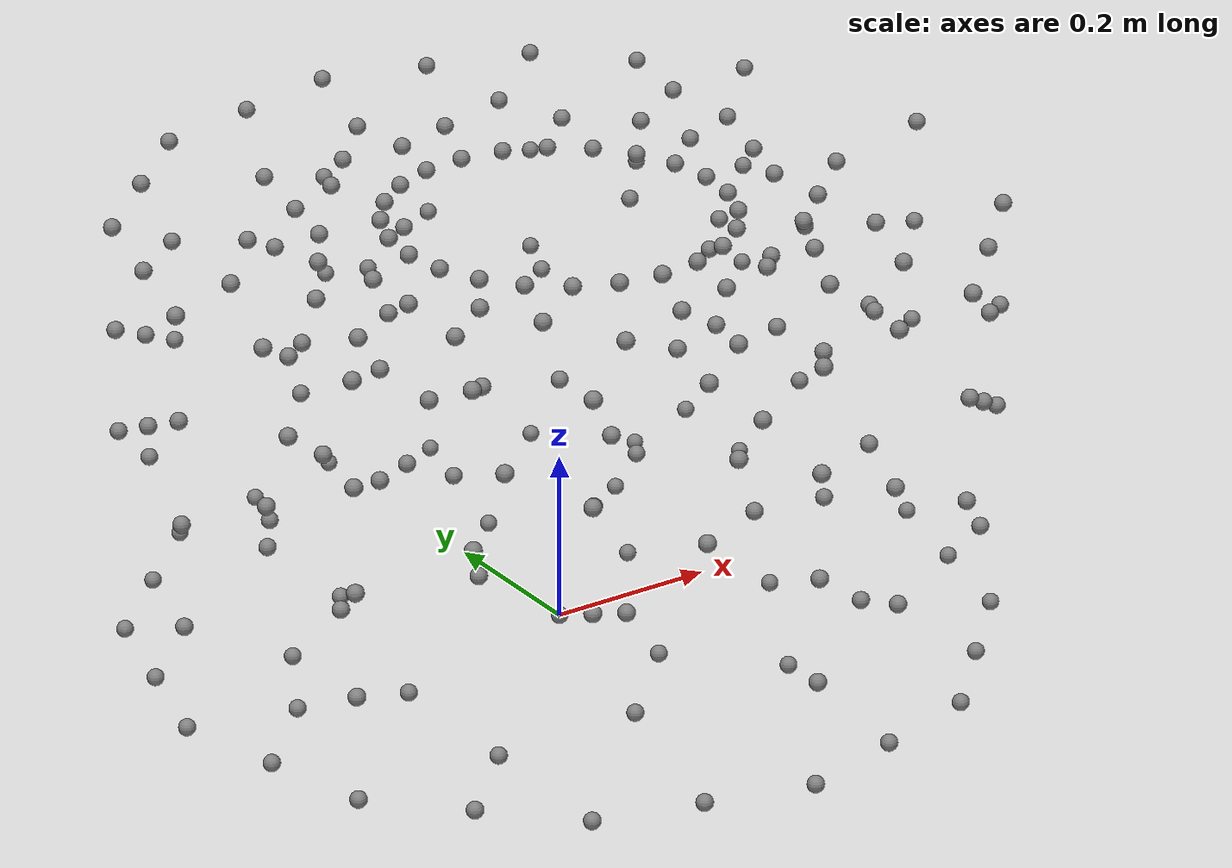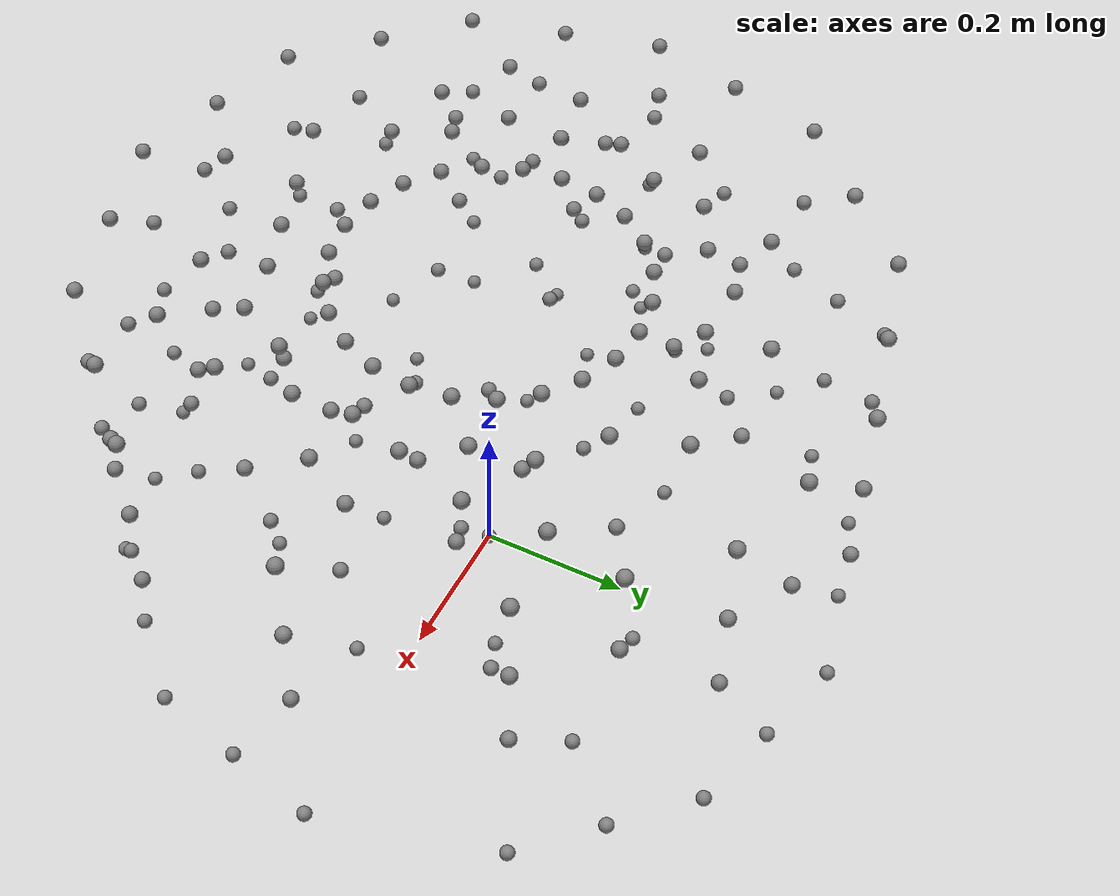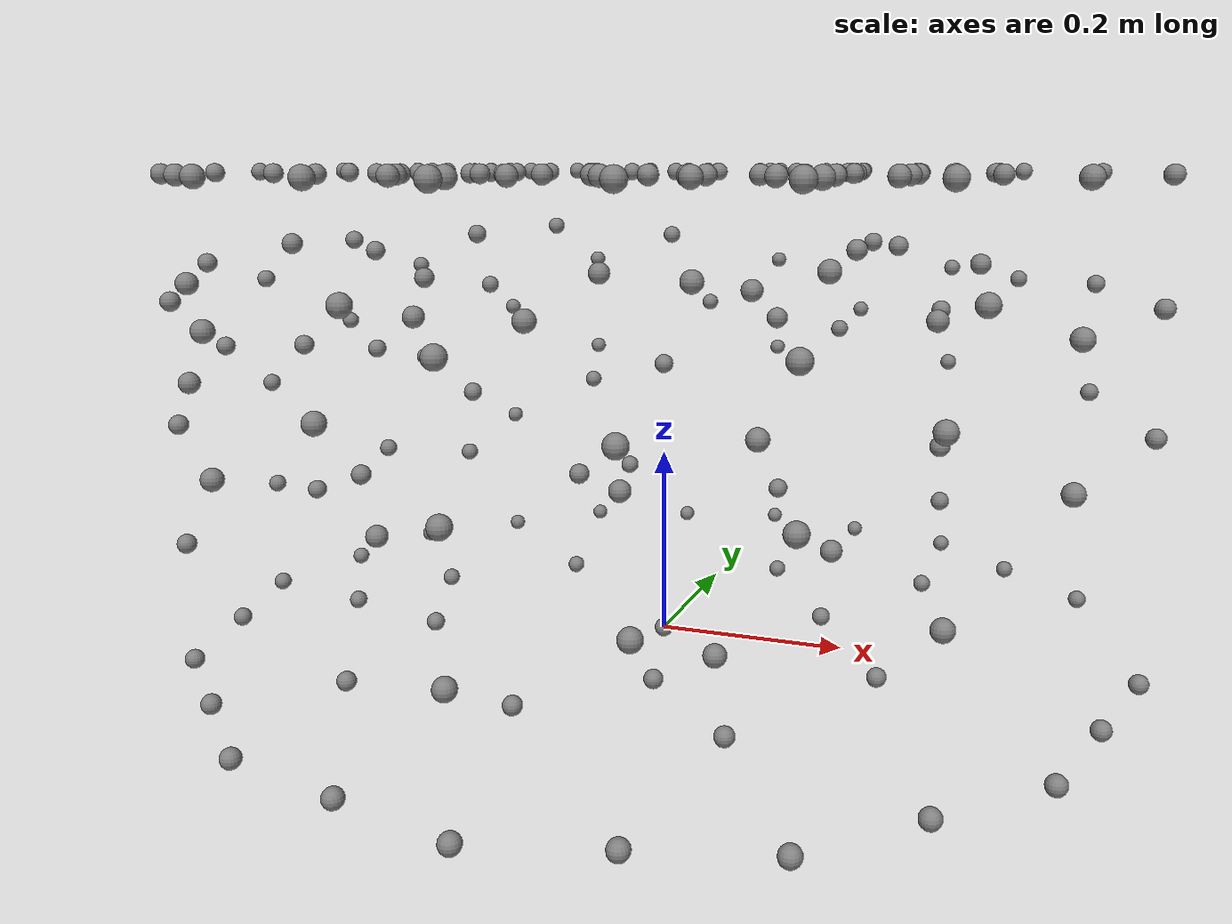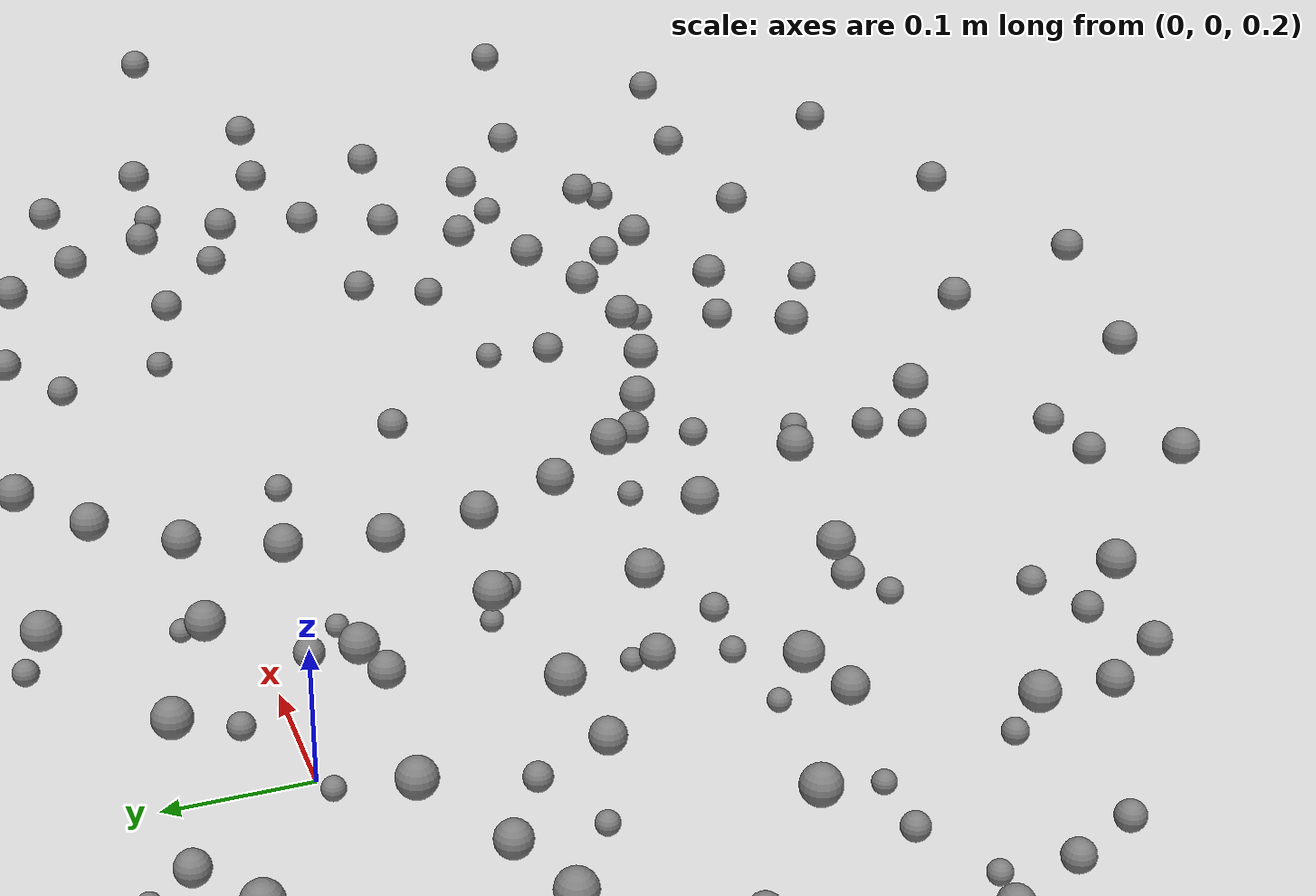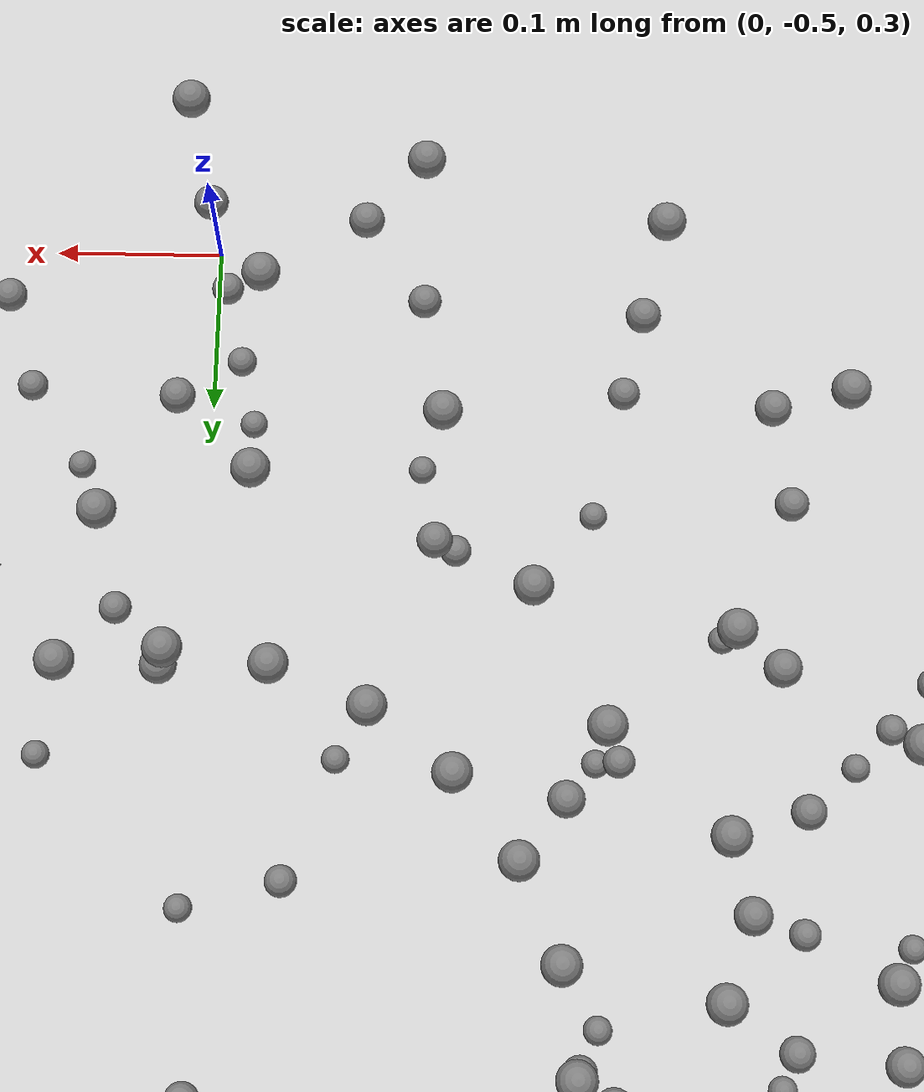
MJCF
<mujoco model="unnamed_model">
  <default>
    <default class="/"/>
  </default>
  <worldbody>
    <body name="point_mass_0">
      <freejoint name="//unnamed_joint_0"/>
      <geom name="point_mass_0" class="/" type="sphere" size="0.01" mass="0.01" pos="-0.17399978637695312 0.10040092468261719 0.50000041723251343"/>
    </body>
    <body name="point_mass_1">
      <freejoint name="//unnamed_joint_1"/>
      <geom name="point_mass_1" class="/" type="sphere" size="0.01" mass="0.01" pos="0 -0 0.29800042510032654"/>
    </body>
    <body name="point_mass_2">
      <freejoint name="//unnamed_joint_2"/>
      <geom name="point_mass_2" class="/" type="sphere" size="0.01" mass="0.01" pos="-0.14200019836425781 0.14200019836425781 0.50000041723251343"/>
    </body>
    <body name="point_mass_3">
      <freejoint name="//unnamed_joint_3"/>
      <geom name="point_mass_3" class="/" type="sphere" size="0.01" mass="0.01" pos="-0.1939997673034668 0.052000045776367188 0.50000041723251343"/>
    </body>
    <body name="point_mass_4">
      <freejoint name="//unnamed_joint_4"/>
      <geom name="point_mass_4" class="/" type="sphere" size="0.01" mass="0.01" pos="-0.20079994201660156 -0 0.50000041723251343"/>
    </body>
    <body name="point_mass_5">
      <freejoint name="//unnamed_joint_5"/>
      <geom name="point_mass_5" class="/" type="sphere" size="0.01" mass="0.01" pos="-0.1939997673034668 -0.052000045776367188 0.50000041723251343"/>
    </body>
    <body name="point_mass_6">
      <freejoint name="//unnamed_joint_6"/>
      <geom name="point_mass_6" class="/" type="sphere" size="0.01" mass="0.01" pos="-0.17399978637695312 -0.10040092468261719 0.50000041723251343"/>
    </body>
    <body name="point_mass_7">
      <freejoint name="//unnamed_joint_7"/>
      <geom name="point_mass_7" class="/" type="sphere" size="0.01" mass="0.01" pos="-0.14200019836425781 -0.14200019836425781 0.50000041723251343"/>
    </body>
    <body name="point_mass_8">
      <freejoint name="//unnamed_joint_8"/>
      <geom name="point_mass_8" class="/" type="sphere" size="0.01" mass="0.01" pos="-0.10039997100830078 -0.17399978637695312 0.50000041723251343"/>
    </body>
    <body name="point_mass_9">
      <freejoint name="//unnamed_joint_9"/>
      <geom name="point_mass_9" class="/" type="sphere" size="0.01" mass="0.01" pos="-0.052000045776367188 -0.194000244140625 0.50000041723251343"/>
    </body>
    <body name="point_mass_10">
      <freejoint name="//unnamed_joint_10"/>
      <geom name="point_mass_10" class="/" type="sphere" size="0.01" mass="0.01" pos="0 -0.20120048522949219 0.50000041723251343"/>
    </body>
    <body name="point_mass_11">
      <freejoint name="//unnamed_joint_11"/>
      <geom name="point_mass_11" class="/" type="sphere" size="0.01" mass="0.01" pos="0.25 0.43300056457519531 0.50000041723251343"/>
    </body>
    <body name="point_mass_12">
      <freejoint name="//unnamed_joint_12"/>
      <geom name="point_mass_12" class="/" type="sphere" size="0.01" mass="0.01" pos="0 0.5 0.50000041723251343"/>
    </body>
    <body name="point_mass_13">
      <freejoint name="//unnamed_joint_13"/>
      <geom name="point_mass_13" class="/" type="sphere" size="0.01" mass="0.01" pos="0.052000045776367188 0.194000244140625 0.50000041723251343"/>
    </body>
    <body name="point_mass_14">
      <freejoint name="//unnamed_joint_14"/>
      <geom name="point_mass_14" class="/" type="sphere" size="0.01" mass="0.01" pos="-0.052000045776367188 0.194000244140625 0.50000041723251343"/>
    </body>
    <body name="point_mass_15">
      <freejoint name="//unnamed_joint_15"/>
      <geom name="point_mass_15" class="/" type="sphere" size="0.01" mass="0.01" pos="0 0.20079994201660156 0.50000041723251343"/>
    </body>
    <body name="point_mass_16">
      <freejoint name="//unnamed_joint_16"/>
      <geom name="point_mass_16" class="/" type="sphere" size="0.01" mass="0.01" pos="-0.25 0.43300056457519531 0.50000041723251343"/>
    </body>
    <body name="point_mass_17">
      <freejoint name="//unnamed_joint_17"/>
      <geom name="point_mass_17" class="/" type="sphere" size="0.01" mass="0.01" pos="-0.10039997100830078 0.17399978637695312 0.50000041723251343"/>
    </body>
    <body name="point_mass_18">
      <freejoint name="//unnamed_joint_18"/>
      <geom name="point_mass_18" class="/" type="sphere" size="0.01" mass="0.01" pos="-0.43300008773803711 0.25 0.50000041723251343"/>
    </body>
    <body name="point_mass_19">
      <freejoint name="//unnamed_joint_19"/>
      <geom name="point_mass_19" class="/" type="sphere" size="0.01" mass="0.01" pos="-0.5 -0 0.50000041723251343"/>
    </body>
    <body name="point_mass_20">
      <freejoint name="//unnamed_joint_20"/>
      <geom name="point_mass_20" class="/" type="sphere" size="0.01" mass="0.01" pos="-0.43300008773803711 -0.25 0.50000041723251343"/>
    </body>
    <body name="point_mass_21">
      <freejoint name="//unnamed_joint_21"/>
      <geom name="point_mass_21" class="/" type="sphere" size="0.01" mass="0.01" pos="-0.25 -0.43300056457519531 0.50000041723251343"/>
    </body>
    <body name="point_mass_22">
      <freejoint name="//unnamed_joint_22"/>
      <geom name="point_mass_22" class="/" type="sphere" size="0.01" mass="0.01" pos="0 -0.5 0.50000041723251343"/>
    </body>
    <body name="point_mass_23">
      <freejoint name="//unnamed_joint_23"/>
      <geom name="point_mass_23" class="/" type="sphere" size="0.01" mass="0.01" pos="0.25 -0.43300056457519531 0.50000041723251343"/>
    </body>
    <body name="point_mass_24">
      <freejoint name="//unnamed_joint_24"/>
      <geom name="point_mass_24" class="/" type="sphere" size="0.01" mass="0.01" pos="0.052000045776367188 -0.194000244140625 0.50000041723251343"/>
    </body>
    <body name="point_mass_25">
      <freejoint name="//unnamed_joint_25"/>
      <geom name="point_mass_25" class="/" type="sphere" size="0.01" mass="0.01" pos="0.25 -0.43300056457519531 4.1723251342773438e-07"/>
    </body>
    <body name="point_mass_26">
      <freejoint name="//unnamed_joint_26"/>
      <geom name="point_mass_26" class="/" type="sphere" size="0.01" mass="0.01" pos="0 -0.5 4.1723251342773438e-07"/>
    </body>
    <body name="point_mass_27">
      <freejoint name="//unnamed_joint_27"/>
      <geom name="point_mass_27" class="/" type="sphere" size="0.01" mass="0.01" pos="-0.25 -0.43300056457519531 4.1723251342773438e-07"/>
    </body>
    <body name="point_mass_28">
      <freejoint name="//unnamed_joint_28"/>
      <geom name="point_mass_28" class="/" type="sphere" size="0.01" mass="0.01" pos="-0.43300008773803711 -0.25 4.1723251342773438e-07"/>
    </body>
    <body name="point_mass_29">
      <freejoint name="//unnamed_joint_29"/>
      <geom name="point_mass_29" class="/" type="sphere" size="0.01" mass="0.01" pos="-0.5 -0 4.1723251342773438e-07"/>
    </body>
    <body name="point_mass_30">
      <freejoint name="//unnamed_joint_30"/>
      <geom name="point_mass_30" class="/" type="sphere" size="0.01" mass="0.01" pos="-0.43300008773803711 0.25 4.1723251342773438e-07"/>
    </body>
    <body name="point_mass_31">
      <freejoint name="//unnamed_joint_31"/>
      <geom name="point_mass_31" class="/" type="sphere" size="0.01" mass="0.01" pos="-0.25 0.43300056457519531 4.1723251342773438e-07"/>
    </body>
    <body name="point_mass_32">
      <freejoint name="//unnamed_joint_32"/>
      <geom name="point_mass_32" class="/" type="sphere" size="0.01" mass="0.01" pos="0 0.5 4.1723251342773438e-07"/>
    </body>
    <body name="point_mass_33">
      <freejoint name="//unnamed_joint_33"/>
      <geom name="point_mass_33" class="/" type="sphere" size="0.01" mass="0.01" pos="0.25 0.43300056457519531 4.1723251342773438e-07"/>
    </body>
    <body name="point_mass_34">
      <freejoint name="//unnamed_joint_34"/>
      <geom name="point_mass_34" class="/" type="sphere" size="0.01" mass="0.01" pos="0.43300008773803711 0.25 4.1723251342773438e-07"/>
    </body>
    <body name="point_mass_35">
      <freejoint name="//unnamed_joint_35"/>
      <geom name="point_mass_35" class="/" type="sphere" size="0.01" mass="0.01" pos="0.5 -0 4.1723251342773438e-07"/>
    </body>
    <body name="point_mass_36">
      <freejoint name="//unnamed_joint_36"/>
      <geom name="point_mass_36" class="/" type="sphere" size="0.01" mass="0.01" pos="0.43300008773803711 -0.25 4.1723251342773438e-07"/>
    </body>
    <body name="point_mass_37">
      <freejoint name="//unnamed_joint_37"/>
      <geom name="point_mass_37" class="/" type="sphere" size="0.01" mass="0.01" pos="0.10039997100830078 -0.17399978637695312 0.50000041723251343"/>
    </body>
    <body name="point_mass_38">
      <freejoint name="//unnamed_joint_38"/>
      <geom name="point_mass_38" class="/" type="sphere" size="0.01" mass="0.01" pos="0.43300008773803711 -0.25 0.50000041723251343"/>
    </body>
    <body name="point_mass_39">
      <freejoint name="//unnamed_joint_39"/>
      <geom name="point_mass_39" class="/" type="sphere" size="0.01" mass="0.01" pos="0.14200019836425781 -0.14200019836425781 0.50000041723251343"/>
    </body>
    <body name="point_mass_40">
      <freejoint name="//unnamed_joint_40"/>
      <geom name="point_mass_40" class="/" type="sphere" size="0.01" mass="0.01" pos="0.17399978637695312 -0.10040092468261719 0.50000041723251343"/>
    </body>
    <body name="point_mass_41">
      <freejoint name="//unnamed_joint_41"/>
      <geom name="point_mass_41" class="/" type="sphere" size="0.01" mass="0.01" pos="0.1939997673034668 -0.052000045776367188 0.50000041723251343"/>
    </body>
    <body name="point_mass_42">
      <freejoint name="//unnamed_joint_42"/>
      <geom name="point_mass_42" class="/" type="sphere" size="0.01" mass="0.01" pos="0.5 -0 0.50000041723251343"/>
    </body>
    <body name="point_mass_43">
      <freejoint name="//unnamed_joint_43"/>
      <geom name="point_mass_43" class="/" type="sphere" size="0.01" mass="0.01" pos="0.20079994201660156 -0 0.50000041723251343"/>
    </body>
    <body name="point_mass_44">
      <freejoint name="//unnamed_joint_44"/>
      <geom name="point_mass_44" class="/" type="sphere" size="0.01" mass="0.01" pos="0.43300008773803711 0.25 0.50000041723251343"/>
    </body>
    <body name="point_mass_45">
      <freejoint name="//unnamed_joint_45"/>
      <geom name="point_mass_45" class="/" type="sphere" size="0.01" mass="0.01" pos="0.1939997673034668 0.052000045776367188 0.50000041723251343"/>
    </body>
    <body name="point_mass_46">
      <freejoint name="//unnamed_joint_46"/>
      <geom name="point_mass_46" class="/" type="sphere" size="0.01" mass="0.01" pos="0.17399978637695312 0.10040092468261719 0.50000041723251343"/>
    </body>
    <body name="point_mass_47">
      <freejoint name="//unnamed_joint_47"/>
      <geom name="point_mass_47" class="/" type="sphere" size="0.01" mass="0.01" pos="0.14200019836425781 0.14200019836425781 0.50000041723251343"/>
    </body>
    <body name="point_mass_48">
      <freejoint name="//unnamed_joint_48"/>
      <geom name="point_mass_48" class="/" type="sphere" size="0.01" mass="0.01" pos="0.10039997100830078 0.17399978637695312 0.50000041723251343"/>
    </body>
    <body name="point_mass_49">
      <freejoint name="//unnamed_joint_49"/>
      <geom name="point_mass_49" class="/" type="sphere" size="0.01" mass="0.01" pos="0 -0 4.1723251342773438e-07"/>
    </body>
    <body name="point_mass_50">
      <freejoint name="//unnamed_joint_50"/>
      <geom name="point_mass_50" class="/" type="sphere" size="0.01" mass="0.01" pos="-0.046006792679451465 0.35039997100830078 0.50000041723251343"/>
    </body>
    <body name="point_mass_51">
      <freejoint name="//unnamed_joint_51"/>
      <geom name="point_mass_51" class="/" type="sphere" size="0.01" mass="0.01" pos="-0.2153032480662207 0.28033634838766525 0.50000041723251343"/>
    </body>
    <body name="point_mass_52">
      <freejoint name="//unnamed_joint_52"/>
      <geom name="point_mass_52" class="/" type="sphere" size="0.01" mass="0.01" pos="-0.32663839640170034 0.13514093703698343 0.50000041723251343"/>
    </body>
    <body name="point_mass_53">
      <freejoint name="//unnamed_joint_53"/>
      <geom name="point_mass_53" class="/" type="sphere" size="0.01" mass="0.01" pos="-0.35039997100830078 -0.046008226857323364 0.50000041723251343"/>
    </body>
    <body name="point_mass_54">
      <freejoint name="//unnamed_joint_54"/>
      <geom name="point_mass_54" class="/" type="sphere" size="0.01" mass="0.01" pos="-0.28033539327304835 -0.21530514753628865 0.50000041723251343"/>
    </body>
    <body name="point_mass_55">
      <freejoint name="//unnamed_joint_55"/>
      <geom name="point_mass_55" class="/" type="sphere" size="0.01" mass="0.01" pos="-0.13514256726788931 -0.32663752267311807 0.50000041723251343"/>
    </body>
    <body name="point_mass_56">
      <freejoint name="//unnamed_joint_56"/>
      <geom name="point_mass_56" class="/" type="sphere" size="0.01" mass="0.01" pos="0.13514256726788937 -0.32663752267311807 0.50000041723251343"/>
    </body>
    <body name="point_mass_57">
      <freejoint name="//unnamed_joint_57"/>
      <geom name="point_mass_57" class="/" type="sphere" size="0.01" mass="0.01" pos="0.28033539327304829 -0.21530514753628865 0.50000041723251343"/>
    </body>
    <body name="point_mass_58">
      <freejoint name="//unnamed_joint_58"/>
      <geom name="point_mass_58" class="/" type="sphere" size="0.01" mass="0.01" pos="0.35039997100830078 -0.046008226857323364 0.50000041723251343"/>
    </body>
    <body name="point_mass_59">
      <freejoint name="//unnamed_joint_59"/>
      <geom name="point_mass_59" class="/" type="sphere" size="0.01" mass="0.01" pos="0.32663839640170034 0.13514093703698343 0.50000041723251343"/>
    </body>
    <body name="point_mass_60">
      <freejoint name="//unnamed_joint_60"/>
      <geom name="point_mass_60" class="/" type="sphere" size="0.01" mass="0.01" pos="0.13514256726788931 0.32663752267311807 0.50000041723251343"/>
    </body>
    <body name="point_mass_61">
      <freejoint name="//unnamed_joint_61"/>
      <geom name="point_mass_61" class="/" type="sphere" size="0.01" mass="0.01" pos="-0.11367124197062077 0.27467818497706259 0.50000041723251343"/>
    </body>
    <body name="point_mass_62">
      <freejoint name="//unnamed_joint_62"/>
      <geom name="point_mass_62" class="/" type="sphere" size="0.01" mass="0.01" pos="0.038707324138498589 0.29457797638501937 0.50000041723251343"/>
    </body>
    <body name="point_mass_63">
      <freejoint name="//unnamed_joint_63"/>
      <geom name="point_mass_63" class="/" type="sphere" size="0.01" mass="0.01" pos="-0.23567601892933199 0.18095162514451751 0.50000041723251343"/>
    </body>
    <body name="point_mass_64">
      <freejoint name="//unnamed_joint_64"/>
      <geom name="point_mass_64" class="/" type="sphere" size="0.01" mass="0.01" pos="-0.27467726347596999 -0.11366980488156189 0.50000041723251343"/>
    </body>
    <body name="point_mass_65">
      <freejoint name="//unnamed_joint_65"/>
      <geom name="point_mass_65" class="/" type="sphere" size="0.01" mass="0.01" pos="-0.29457911808534953 0.038708395735159551 0.50000041723251343"/>
    </body>
    <body name="point_mass_66">
      <freejoint name="//unnamed_joint_66"/>
      <geom name="point_mass_66" class="/" type="sphere" size="0.01" mass="0.01" pos="-0.18095029999982984 -0.23567669685270559 0.50000041723251343"/>
    </body>
    <body name="point_mass_67">
      <freejoint name="//unnamed_joint_67"/>
      <geom name="point_mass_67" class="/" type="sphere" size="0.01" mass="0.01" pos="-0.039387370425241076 -0.29428361128182629 0.50000041723251343"/>
    </body>
    <body name="point_mass_68">
      <freejoint name="//unnamed_joint_68"/>
      <geom name="point_mass_68" class="/" type="sphere" size="0.01" mass="0.01" pos="0.18095029999982981 -0.23567669685270559 0.50000041723251343"/>
    </body>
    <body name="point_mass_69">
      <freejoint name="//unnamed_joint_69"/>
      <geom name="point_mass_69" class="/" type="sphere" size="0.01" mass="0.01" pos="0.27467726347597005 -0.11366980488156191 0.50000041723251343"/>
    </body>
    <body name="point_mass_70">
      <freejoint name="//unnamed_joint_70"/>
      <geom name="point_mass_70" class="/" type="sphere" size="0.01" mass="0.01" pos="0.29457911808534953 0.038708395735159551 0.50000041723251343"/>
    </body>
    <body name="point_mass_71">
      <freejoint name="//unnamed_joint_71"/>
      <geom name="point_mass_71" class="/" type="sphere" size="0.01" mass="0.01" pos="0.23590014760401767 0.18112403260784635 0.50000041723251343"/>
    </body>
    <body name="point_mass_72">
      <freejoint name="//unnamed_joint_72"/>
      <geom name="point_mass_72" class="/" type="sphere" size="0.01" mass="0.01" pos="0.036218906725356506 -0.27140100840766657 0.50000041723251343"/>
    </body>
    <body name="point_mass_73">
      <freejoint name="//unnamed_joint_73"/>
      <geom name="point_mass_73" class="/" type="sphere" size="0.01" mass="0.01" pos="0.5 0 0.25000041723251343"/>
    </body>
    <body name="point_mass_74">
      <freejoint name="//unnamed_joint_74"/>
      <geom name="point_mass_74" class="/" type="sphere" size="0.01" mass="0.01" pos="0 -0.5 0.25000041723251343"/>
    </body>
    <body name="point_mass_75">
      <freejoint name="//unnamed_joint_75"/>
      <geom name="point_mass_75" class="/" type="sphere" size="0.01" mass="0.01" pos="0.25 -0.43300056457519531 0.25000041723251343"/>
    </body>
    <body name="point_mass_76">
      <freejoint name="//unnamed_joint_76"/>
      <geom name="point_mass_76" class="/" type="sphere" size="0.01" mass="0.01" pos="0.43300008773803711 -0.25 0.25000041723251343"/>
    </body>
    <body name="point_mass_77">
      <freejoint name="//unnamed_joint_77"/>
      <geom name="point_mass_77" class="/" type="sphere" size="0.01" mass="0.01" pos="-0.43300008773803711 -0.25 0.25000041723251343"/>
    </body>
    <body name="point_mass_78">
      <freejoint name="//unnamed_joint_78"/>
      <geom name="point_mass_78" class="/" type="sphere" size="0.01" mass="0.01" pos="0 0.5 0.25000041723251343"/>
    </body>
    <body name="point_mass_79">
      <freejoint name="//unnamed_joint_79"/>
      <geom name="point_mass_79" class="/" type="sphere" size="0.01" mass="0.01" pos="0 -0.5 0.37500041723251343"/>
    </body>
    <body name="point_mass_80">
      <freejoint name="//unnamed_joint_80"/>
      <geom name="point_mass_80" class="/" type="sphere" size="0.01" mass="0.01" pos="-0.25 -0.43300056457519531 0.25000041723251343"/>
    </body>
    <body name="point_mass_81">
      <freejoint name="//unnamed_joint_81"/>
      <geom name="point_mass_81" class="/" type="sphere" size="0.01" mass="0.01" pos="0.25 -0.06697806422425856 4.1723251342773438e-07"/>
    </body>
    <body name="point_mass_82">
      <freejoint name="//unnamed_joint_82"/>
      <geom name="point_mass_82" class="/" type="sphere" size="0.01" mass="0.01" pos="0.25 -0.43300056457519531 0.37500041723251343"/>
    </body>
    <body name="point_mass_83">
      <freejoint name="//unnamed_joint_83"/>
      <geom name="point_mass_83" class="/" type="sphere" size="0.01" mass="0.01" pos="0.30185124873372587 -0.048421909450381745 0.23835195604629147"/>
    </body>
    <body name="point_mass_84">
      <freejoint name="//unnamed_joint_84"/>
      <geom name="point_mass_84" class="/" type="sphere" size="0.01" mass="0.01" pos="-0.066978413269680459 -0.25 4.1723251342773438e-07"/>
    </body>
    <body name="point_mass_85">
      <freejoint name="//unnamed_joint_85"/>
      <geom name="point_mass_85" class="/" type="sphere" size="0.01" mass="0.01" pos="-0.25 0.43300056457519531 0.25000041723251343"/>
    </body>
    <body name="point_mass_86">
      <freejoint name="//unnamed_joint_86"/>
      <geom name="point_mass_86" class="/" type="sphere" size="0.01" mass="0.01" pos="0.25 0.43300056457519531 0.25000041723251343"/>
    </body>
    <body name="point_mass_87">
      <freejoint name="//unnamed_joint_87"/>
      <geom name="point_mass_87" class="/" type="sphere" size="0.01" mass="0.01" pos="0.14048084713118317 0.24599430502304362 0.31253447826443592"/>
    </body>
    <body name="point_mass_88">
      <freejoint name="//unnamed_joint_88"/>
      <geom name="point_mass_88" class="/" type="sphere" size="0.01" mass="0.01" pos="-0.43300008773803711 0.25 0.25000041723251343"/>
    </body>
    <body name="point_mass_89">
      <freejoint name="//unnamed_joint_89"/>
      <geom name="point_mass_89" class="/" type="sphere" size="0.01" mass="0.01" pos="0.125 0.46650028228759766 0.50000041723251343"/>
    </body>
    <body name="point_mass_90">
      <freejoint name="//unnamed_joint_90"/>
      <geom name="point_mass_90" class="/" type="sphere" size="0.01" mass="0.01" pos="0.061544966929866385 -0.29411055851237344 0.23271466600284749"/>
    </body>
    <body name="point_mass_91">
      <freejoint name="//unnamed_joint_91"/>
      <geom name="point_mass_91" class="/" type="sphere" size="0.01" mass="0.01" pos="-0.25 -0.06697806422425856 4.1723251342773438e-07"/>
    </body>
    <body name="point_mass_92">
      <freejoint name="//unnamed_joint_92"/>
      <geom name="point_mass_92" class="/" type="sphere" size="0.01" mass="0.01" pos="-0.2483910671288086 -0.20960668491366699 0.20350259953853292"/>
    </body>
    <body name="point_mass_93">
      <freejoint name="//unnamed_joint_93"/>
      <geom name="point_mass_93" class="/" type="sphere" size="0.01" mass="0.01" pos="-0.125 -0.46650028228759766 0.31250041723251343"/>
    </body>
    <body name="point_mass_94">
      <freejoint name="//unnamed_joint_94"/>
      <geom name="point_mass_94" class="/" type="sphere" size="0.01" mass="0.01" pos="-0.5 0 0.25000041723251343"/>
    </body>
    <body name="point_mass_95">
      <freejoint name="//unnamed_joint_95"/>
      <geom name="point_mass_95" class="/" type="sphere" size="0.01" mass="0.01" pos="-0.46650004386901855 0.125 0.50000041723251343"/>
    </body>
    <body name="point_mass_96">
      <freejoint name="//unnamed_joint_96"/>
      <geom name="point_mass_96" class="/" type="sphere" size="0.01" mass="0.01" pos="-0.18300307924651532 0.18301125017546838 4.1723251342773438e-07"/>
    </body>
    <body name="point_mass_97">
      <freejoint name="//unnamed_joint_97"/>
      <geom name="point_mass_97" class="/" type="sphere" size="0.01" mass="0.01" pos="-0.125 -0.46650028228759766 0.50000041723251343"/>
    </body>
    <body name="point_mass_98">
      <freejoint name="//unnamed_joint_98"/>
      <geom name="point_mass_98" class="/" type="sphere" size="0.01" mass="0.01" pos="0.27915343052789471 0.10185704385383516 0.35566878252078687"/>
    </body>
    <body name="point_mass_99">
      <freejoint name="//unnamed_joint_99"/>
      <geom name="point_mass_99" class="/" type="sphere" size="0.01" mass="0.01" pos="-0.125 0.46650028228759766 0.50000041723251343"/>
    </body>
    <body name="point_mass_100">
      <freejoint name="//unnamed_joint_100"/>
      <geom name="point_mass_100" class="/" type="sphere" size="0.01" mass="0.01" pos="-0.18656583487688627 0.25694559016968083 0.23137796589600651"/>
    </body>
    <body name="point_mass_101">
      <freejoint name="//unnamed_joint_101"/>
      <geom name="point_mass_101" class="/" type="sphere" size="0.01" mass="0.01" pos="0.25 0.43300056457519531 0.37500041723251343"/>
    </body>
    <body name="point_mass_102">
      <freejoint name="//unnamed_joint_102"/>
      <geom name="point_mass_102" class="/" type="sphere" size="0.01" mass="0.01" pos="0.43300008773803711 0.25 0.25000041723251343"/>
    </body>
    <body name="point_mass_103">
      <freejoint name="//unnamed_joint_103"/>
      <geom name="point_mass_103" class="/" type="sphere" size="0.01" mass="0.01" pos="-0.33462738825646393 -0.029508607362558927 0.3030344603008458"/>
    </body>
    <body name="point_mass_104">
      <freejoint name="//unnamed_joint_104"/>
      <geom name="point_mass_104" class="/" type="sphere" size="0.01" mass="0.01" pos="-0.26616674486294822 0.12235988503274363 0.3645973065620981"/>
    </body>
    <body name="point_mass_105">
      <freejoint name="//unnamed_joint_105"/>
      <geom name="point_mass_105" class="/" type="sphere" size="0.01" mass="0.01" pos="0.5 0 0.37500041723251343"/>
    </body>
    <body name="point_mass_106">
      <freejoint name="//unnamed_joint_106"/>
      <geom name="point_mass_106" class="/" type="sphere" size="0.01" mass="0.01" pos="-0.43300008773803711 -0.25 0.37500041723251343"/>
    </body>
    <body name="point_mass_107">
      <freejoint name="//unnamed_joint_107"/>
      <geom name="point_mass_107" class="/" type="sphere" size="0.01" mass="0.01" pos="-0.25 0.43300056457519531 0.37500041723251343"/>
    </body>
    <body name="point_mass_108">
      <freejoint name="//unnamed_joint_108"/>
      <geom name="point_mass_108" class="/" type="sphere" size="0.01" mass="0.01" pos="-0.048635521141228572 0.32713382996288543 0.33053548944177769"/>
    </body>
    <body name="point_mass_109">
      <freejoint name="//unnamed_joint_109"/>
      <geom name="point_mass_109" class="/" type="sphere" size="0.01" mass="0.01" pos="-0.125 0.46650028228759766 4.1723251342773438e-07"/>
    </body>
    <body name="point_mass_110">
      <freejoint name="//unnamed_joint_110"/>
      <geom name="point_mass_110" class="/" type="sphere" size="0.01" mass="0.01" pos="-0.34150004386901855 0.34150028228759766 4.1723251342773438e-07"/>
    </body>
    <body name="point_mass_111">
      <freejoint name="//unnamed_joint_111"/>
      <geom name="point_mass_111" class="/" type="sphere" size="0.01" mass="0.01" pos="0.43300008773803711 -0.25 0.37500041723251343"/>
    </body>
    <body name="point_mass_112">
      <freejoint name="//unnamed_joint_112"/>
      <geom name="point_mass_112" class="/" type="sphere" size="0.01" mass="0.01" pos="-0.13267917051255457 -0.29636534646534873 0.37628018878906422"/>
    </body>
    <body name="point_mass_113">
      <freejoint name="//unnamed_joint_113"/>
      <geom name="point_mass_113" class="/" type="sphere" size="0.01" mass="0.01" pos="-0.125 -0.46650028228759766 4.1723251342773438e-07"/>
    </body>
    <body name="point_mass_114">
      <freejoint name="//unnamed_joint_114"/>
      <geom name="point_mass_114" class="/" type="sphere" size="0.01" mass="0.01" pos="-0.091655939120261376 -0.47543641530244884 0.40625041723251343"/>
    </body>
    <body name="point_mass_115">
      <freejoint name="//unnamed_joint_115"/>
      <geom name="point_mass_115" class="/" type="sphere" size="0.01" mass="0.01" pos="0.06698129385276666 0.250010748534924 4.1723251342773438e-07"/>
    </body>
    <body name="point_mass_116">
      <freejoint name="//unnamed_joint_116"/>
      <geom name="point_mass_116" class="/" type="sphere" size="0.01" mass="0.01" pos="-0.25 -0.43300056457519531 0.37500041723251343"/>
    </body>
    <body name="point_mass_117">
      <freejoint name="//unnamed_joint_117"/>
      <geom name="point_mass_117" class="/" type="sphere" size="0.01" mass="0.01" pos="0.15300691170806793 -0.20567579789130372 0.40050026486228935"/>
    </body>
    <body name="point_mass_118">
      <freejoint name="//unnamed_joint_118"/>
      <geom name="point_mass_118" class="/" type="sphere" size="0.01" mass="0.01" pos="-0.34150004386901855 -0.34150028228759766 0.31250041723251343"/>
    </body>
    <body name="point_mass_119">
      <freejoint name="//unnamed_joint_119"/>
      <geom name="point_mass_119" class="/" type="sphere" size="0.01" mass="0.01" pos="0.15849043992446235 0.091516222639368039 4.1723251342773438e-07"/>
    </body>
    <body name="point_mass_120">
      <freejoint name="//unnamed_joint_120"/>
      <geom name="point_mass_120" class="/" type="sphere" size="0.01" mass="0.01" pos="0.43300008773803711 0.25 0.37500041723251343"/>
    </body>
    <body name="point_mass_121">
      <freejoint name="//unnamed_joint_121"/>
      <geom name="point_mass_121" class="/" type="sphere" size="0.01" mass="0.01" pos="0.24997902031551902 0.25000283914411886 4.1723251342773438e-07"/>
    </body>
    <body name="point_mass_122">
      <freejoint name="//unnamed_joint_122"/>
      <geom name="point_mass_122" class="/" type="sphere" size="0.01" mass="0.01" pos="0.32983866378539423 -0.015704334851889518 0.41416091760758583"/>
    </body>
    <body name="point_mass_123">
      <freejoint name="//unnamed_joint_123"/>
      <geom name="point_mass_123" class="/" type="sphere" size="0.01" mass="0.01" pos="0.46650004386901855 -0.125 4.1723251342773438e-07"/>
    </body>
    <body name="point_mass_124">
      <freejoint name="//unnamed_joint_124"/>
      <geom name="point_mass_124" class="/" type="sphere" size="0.01" mass="0.01" pos="-0.065927499781213483 0.22096780423581194 0.42344966344483509"/>
    </body>
    <body name="point_mass_125">
      <freejoint name="//unnamed_joint_125"/>
      <geom name="point_mass_125" class="/" type="sphere" size="0.01" mass="0.01" pos="-0.46650004386901855 0.125 4.1723251342773438e-07"/>
    </body>
    <body name="point_mass_126">
      <freejoint name="//unnamed_joint_126"/>
      <geom name="point_mass_126" class="/" type="sphere" size="0.01" mass="0.01" pos="-0.34150004386901855 -0.34150028228759766 0.50000041723251343"/>
    </body>
    <body name="point_mass_127">
      <freejoint name="//unnamed_joint_127"/>
      <geom name="point_mass_127" class="/" type="sphere" size="0.01" mass="0.01" pos="-0.5 0 0.37500041723251343"/>
    </body>
    <body name="point_mass_128">
      <freejoint name="//unnamed_joint_128"/>
      <geom name="point_mass_128" class="/" type="sphere" size="0.01" mass="0.01" pos="-0.20332269923483237 -0.14957952092914109 0.39690700147477909"/>
    </body>
    <body name="point_mass_129">
      <freejoint name="//unnamed_joint_129"/>
      <geom name="point_mass_129" class="/" type="sphere" size="0.01" mass="0.01" pos="-0.035627232806304851 0.27042589637991332 0.50000041723251343"/>
    </body>
    <body name="point_mass_130">
      <freejoint name="//unnamed_joint_130"/>
      <geom name="point_mass_130" class="/" type="sphere" size="0.01" mass="0.01" pos="-0.34150004386901855 0.34150028228759766 0.15848953660599818"/>
    </body>
    <body name="point_mass_131">
      <freejoint name="//unnamed_joint_131"/>
      <geom name="point_mass_131" class="/" type="sphere" size="0.01" mass="0.01" pos="-0.46650004386901855 -0.125 0.50000041723251343"/>
    </body>
    <body name="point_mass_132">
      <freejoint name="//unnamed_joint_132"/>
      <geom name="point_mass_132" class="/" type="sphere" size="0.01" mass="0.01" pos="0.012185737014228247 -0.37502864754956966 0.38730613974787664"/>
    </body>
    <body name="point_mass_133">
      <freejoint name="//unnamed_joint_133"/>
      <geom name="point_mass_133" class="/" type="sphere" size="0.01" mass="0.01" pos="-0.14715703709616207 -0.34779066353562615 0.18735159660557571"/>
    </body>
    <body name="point_mass_134">
      <freejoint name="//unnamed_joint_134"/>
      <geom name="point_mass_134" class="/" type="sphere" size="0.01" mass="0.01" pos="-0.24998925050385878 -0.2499897273684053 4.1723251342773438e-07"/>
    </body>
    <body name="point_mass_135">
      <freejoint name="//unnamed_joint_135"/>
      <geom name="point_mass_135" class="/" type="sphere" size="0.01" mass="0.01" pos="0.011901984736698776 -0.21398376225104337 0.41235318530618681"/>
    </body>
    <body name="point_mass_136">
      <freejoint name="//unnamed_joint_136"/>
      <geom name="point_mass_136" class="/" type="sphere" size="0.01" mass="0.01" pos="0.2521885546022205 0.1045388282905996 0.50000041723251343"/>
    </body>
    <body name="point_mass_137">
      <freejoint name="//unnamed_joint_137"/>
      <geom name="point_mass_137" class="/" type="sphere" size="0.01" mass="0.01" pos="0.21656321400068396 -0.16603044770777381 0.50000041723251343"/>
    </body>
    <body name="point_mass_138">
      <freejoint name="//unnamed_joint_138"/>
      <geom name="point_mass_138" class="/" type="sphere" size="0.01" mass="0.01" pos="-0.34150004386901855 -0.34150028228759766 4.1723251342773438e-07"/>
    </body>
    <body name="point_mass_139">
      <freejoint name="//unnamed_joint_139"/>
      <geom name="point_mass_139" class="/" type="sphere" size="0.01" mass="0.01" pos="-0.31709558449632125 -0.36590480525017188 0.40625041723251343"/>
    </body>
    <body name="point_mass_140">
      <freejoint name="//unnamed_joint_140"/>
      <geom name="point_mass_140" class="/" type="sphere" size="0.01" mass="0.01" pos="-0.3102507798611242 0.08314130854193795 4.1723251342773438e-07"/>
    </body>
    <body name="point_mass_141">
      <freejoint name="//unnamed_joint_141"/>
      <geom name="point_mass_141" class="/" type="sphere" size="0.01" mass="0.01" pos="-0.2165632140006839 -0.16603044770777384 0.50000041723251343"/>
    </body>
    <body name="point_mass_142">
      <freejoint name="//unnamed_joint_142"/>
      <geom name="point_mass_142" class="/" type="sphere" size="0.01" mass="0.01" pos="-0.077949604831849317 0.10187742610530688 0.15837063636025531"/>
    </body>
    <body name="point_mass_143">
      <freejoint name="//unnamed_joint_143"/>
      <geom name="point_mass_143" class="/" type="sphere" size="0.01" mass="0.01" pos="0.28019752497711514 0.14819938812700345 0.13276698245553323"/>
    </body>
    <body name="point_mass_144">
      <freejoint name="//unnamed_joint_144"/>
      <geom name="point_mass_144" class="/" type="sphere" size="0.01" mass="0.01" pos="-0.040490275912114113 -0.40112361295615462 0.50000041723251343"/>
    </body>
    <body name="point_mass_145">
      <freejoint name="//unnamed_joint_145"/>
      <geom name="point_mass_145" class="/" type="sphere" size="0.01" mass="0.01" pos="-0.43300008773803711 0.25 0.37500041723251343"/>
    </body>
    <body name="point_mass_146">
      <freejoint name="//unnamed_joint_146"/>
      <geom name="point_mass_146" class="/" type="sphere" size="0.01" mass="0.01" pos="0.27042519606046844 -0.03562567586965306 0.50000041723251343"/>
    </body>
    <body name="point_mass_147">
      <freejoint name="//unnamed_joint_147"/>
      <geom name="point_mass_147" class="/" type="sphere" size="0.01" mass="0.01" pos="-0.30651910711443259 0.13352528432489497 0.15057377292880622"/>
    </body>
    <body name="point_mass_148">
      <freejoint name="//unnamed_joint_148"/>
      <geom name="point_mass_148" class="/" type="sphere" size="0.01" mass="0.01" pos="-0.22350577485463427 0.0078114059321164331 0.43224787193729547"/>
    </body>
    <body name="point_mass_149">
      <freejoint name="//unnamed_joint_149"/>
      <geom name="point_mass_149" class="/" type="sphere" size="0.01" mass="0.01" pos="-0.27042519606046844 -0.035625675869653067 0.50000041723251343"/>
    </body>
    <body name="point_mass_150">
      <freejoint name="//unnamed_joint_150"/>
      <geom name="point_mass_150" class="/" type="sphere" size="0.01" mass="0.01" pos="0.31021404476424197 -0.16768278292282734 0.37528430620757247"/>
    </body>
    <body name="point_mass_151">
      <freejoint name="//unnamed_joint_151"/>
      <geom name="point_mass_151" class="/" type="sphere" size="0.01" mass="0.01" pos="-0.22838543658307733 0.23897571537659679 0.43094606020797477"/>
    </body>
    <body name="point_mass_152">
      <freejoint name="//unnamed_joint_152"/>
      <geom name="point_mass_152" class="/" type="sphere" size="0.01" mass="0.01" pos="-0.34150004386901855 0.34150028228759766 0.31250041723251343"/>
    </body>
    <body name="point_mass_153">
      <freejoint name="//unnamed_joint_153"/>
      <geom name="point_mass_153" class="/" type="sphere" size="0.01" mass="0.01" pos="0.34150004386901855 0.34150028228759766 4.1723251342773438e-07"/>
    </body>
    <body name="point_mass_154">
      <freejoint name="//unnamed_joint_154"/>
      <geom name="point_mass_154" class="/" type="sphere" size="0.01" mass="0.01" pos="-0.29591239745295012 -0.0877617495251313 0.41816024148779135"/>
    </body>
    <body name="point_mass_155">
      <freejoint name="//unnamed_joint_155"/>
      <geom name="point_mass_155" class="/" type="sphere" size="0.01" mass="0.01" pos="-0.36761792595102144 -0.014693714952335494 0.42420584234848335"/>
    </body>
    <body name="point_mass_156">
      <freejoint name="//unnamed_joint_156"/>
      <geom name="point_mass_156" class="/" type="sphere" size="0.01" mass="0.01" pos="0.192589316843716 -0.32818563445989501 0.29392439624985117"/>
    </body>
    <body name="point_mass_157">
      <freejoint name="//unnamed_joint_157"/>
      <geom name="point_mass_157" class="/" type="sphere" size="0.01" mass="0.01" pos="0.34150004386901855 -0.34150028228759766 0.31250041723251343"/>
    </body>
    <body name="point_mass_158">
      <freejoint name="//unnamed_joint_158"/>
      <geom name="point_mass_158" class="/" type="sphere" size="0.01" mass="0.01" pos="0.34150004386901855 -0.34150028228759766 4.1723251342773438e-07"/>
    </body>
    <body name="point_mass_159">
      <freejoint name="//unnamed_joint_159"/>
      <geom name="point_mass_159" class="/" type="sphere" size="0.01" mass="0.01" pos="0.14434265221497738 -0.24998931439972694 4.1723251342773438e-07"/>
    </body>
    <body name="point_mass_160">
      <freejoint name="//unnamed_joint_160"/>
      <geom name="point_mass_160" class="/" type="sphere" size="0.01" mass="0.01" pos="0.125 -0.46650028228759766 4.1723251342773438e-07"/>
    </body>
    <body name="point_mass_161">
      <freejoint name="//unnamed_joint_161"/>
      <geom name="point_mass_161" class="/" type="sphere" size="0.01" mass="0.01" pos="0 0.5 0.37500041723251343"/>
    </body>
    <body name="point_mass_162">
      <freejoint name="//unnamed_joint_162"/>
      <geom name="point_mass_162" class="/" type="sphere" size="0.01" mass="0.01" pos="0.125 -0.46650028228759766 0.31250041723251343"/>
    </body>
    <body name="point_mass_163">
      <freejoint name="//unnamed_joint_163"/>
      <geom name="point_mass_163" class="/" type="sphere" size="0.01" mass="0.01" pos="-0.34150004386901855 0.34150028228759766 0.50000041723251343"/>
    </body>
    <body name="point_mass_164">
      <freejoint name="//unnamed_joint_164"/>
      <geom name="point_mass_164" class="/" type="sphere" size="0.01" mass="0.01" pos="0.34455894067990395 -0.33844137750624803 0.15625041723251343"/>
    </body>
    <body name="point_mass_165">
      <freejoint name="//unnamed_joint_165"/>
      <geom name="point_mass_165" class="/" type="sphere" size="0.01" mass="0.01" pos="0.34150004386901855 -0.34150028228759766 0.50000041723251343"/>
    </body>
    <body name="point_mass_166">
      <freejoint name="//unnamed_joint_166"/>
      <geom name="point_mass_166" class="/" type="sphere" size="0.01" mass="0.01" pos="0.22775673366864785 -0.19943081508245966 0.16835977836037641"/>
    </body>
    <body name="point_mass_167">
      <freejoint name="//unnamed_joint_167"/>
      <geom name="point_mass_167" class="/" type="sphere" size="0.01" mass="0.01" pos="0.125 -0.46650028228759766 0.50000041723251343"/>
    </body>
    <body name="point_mass_168">
      <freejoint name="//unnamed_joint_168"/>
      <geom name="point_mass_168" class="/" type="sphere" size="0.01" mass="0.01" pos="0.36590450324171586 -0.31709575932502343 0.40625041723251343"/>
    </body>
    <body name="point_mass_169">
      <freejoint name="//unnamed_joint_169"/>
      <geom name="point_mass_169" class="/" type="sphere" size="0.01" mass="0.01" pos="0.10731714221117274 -0.24840393440834363 0.50000041723251343"/>
    </body>
    <body name="point_mass_170">
      <freejoint name="//unnamed_joint_170"/>
      <geom name="point_mass_170" class="/" type="sphere" size="0.01" mass="0.01" pos="0.23918908898826413 -0.32202042686793747 0.50000041723251343"/>
    </body>
    <body name="point_mass_171">
      <freejoint name="//unnamed_joint_171"/>
      <geom name="point_mass_171" class="/" type="sphere" size="0.01" mass="0.01" pos="0.125 0.46650028228759766 0.31250041723251343"/>
    </body>
    <body name="point_mass_172">
      <freejoint name="//unnamed_joint_172"/>
      <geom name="point_mass_172" class="/" type="sphere" size="0.01" mass="0.01" pos="-0.46650004386901855 -0.125 0.31250041723251343"/>
    </body>
    <body name="point_mass_173">
      <freejoint name="//unnamed_joint_173"/>
      <geom name="point_mass_173" class="/" type="sphere" size="0.01" mass="0.01" pos="-0.4575638398024271 -0.15834408868944422 0.40625041723251343"/>
    </body>
    <body name="point_mass_174">
      <freejoint name="//unnamed_joint_174"/>
      <geom name="point_mass_174" class="/" type="sphere" size="0.01" mass="0.01" pos="-0.34245455173730055 -0.15842940603108774 0.32391110848549021"/>
    </body>
    <body name="point_mass_175">
      <freejoint name="//unnamed_joint_175"/>
      <geom name="point_mass_175" class="/" type="sphere" size="0.01" mass="0.01" pos="-0.46650004386901855 -0.125 4.1723251342773438e-07"/>
    </body>
    <body name="point_mass_176">
      <freejoint name="//unnamed_joint_176"/>
      <geom name="point_mass_176" class="/" type="sphere" size="0.01" mass="0.01" pos="0.23629660966907362 -0.27462693726994869 0.42470309186949839"/>
    </body>
    <body name="point_mass_177">
      <freejoint name="//unnamed_joint_177"/>
      <geom name="point_mass_177" class="/" type="sphere" size="0.01" mass="0.01" pos="0.14851740927580265 -0.09588853655219616 0.36404697292219723"/>
    </body>
    <body name="point_mass_178">
      <freejoint name="//unnamed_joint_178"/>
      <geom name="point_mass_178" class="/" type="sphere" size="0.01" mass="0.01" pos="-0.5 0 0.12500041723251343"/>
    </body>
    <body name="point_mass_179">
      <freejoint name="//unnamed_joint_179"/>
      <geom name="point_mass_179" class="/" type="sphere" size="0.01" mass="0.01" pos="0.12255675823692443 0.023026851766605273 0.16467787529098826"/>
    </body>
    <body name="point_mass_180">
      <freejoint name="//unnamed_joint_180"/>
      <geom name="point_mass_180" class="/" type="sphere" size="0.01" mass="0.01" pos="0.24251137197688977 0.031899367682003792 0.42702123667596609"/>
    </body>
    <body name="point_mass_181">
      <freejoint name="//unnamed_joint_181"/>
      <geom name="point_mass_181" class="/" type="sphere" size="0.01" mass="0.01" pos="-0.43300008773803711 -0.25 0.12500041723251343"/>
    </body>
    <body name="point_mass_182">
      <freejoint name="//unnamed_joint_182"/>
      <geom name="point_mass_182" class="/" type="sphere" size="0.01" mass="0.01" pos="0.13401793475456869 -0.31893062436476949 0.41712161357456823"/>
    </body>
    <body name="point_mass_183">
      <freejoint name="//unnamed_joint_183"/>
      <geom name="point_mass_183" class="/" type="sphere" size="0.01" mass="0.01" pos="-0.043812754958790785 -0.13349485526098376 0.20319690817740446"/>
    </body>
    <body name="point_mass_184">
      <freejoint name="//unnamed_joint_184"/>
      <geom name="point_mass_184" class="/" type="sphere" size="0.01" mass="0.01" pos="-0.36648590598240249 -0.11303459189986975 0.15559131729199804"/>
    </body>
    <body name="point_mass_185">
      <freejoint name="//unnamed_joint_185"/>
      <geom name="point_mass_185" class="/" type="sphere" size="0.01" mass="0.01" pos="-0.21940408412009305 -0.020755933524956433 0.25822938789145872"/>
    </body>
    <body name="point_mass_186">
      <freejoint name="//unnamed_joint_186"/>
      <geom name="point_mass_186" class="/" type="sphere" size="0.01" mass="0.01" pos="0.16613287096349963 -0.35445371587778463 0.11876723665896759"/>
    </body>
    <body name="point_mass_187">
      <freejoint name="//unnamed_joint_187"/>
      <geom name="point_mass_187" class="/" type="sphere" size="0.01" mass="0.01" pos="0.22414263447257632 -0.095438987621704413 0.43063531985166881"/>
    </body>
    <body name="point_mass_188">
      <freejoint name="//unnamed_joint_188"/>
      <geom name="point_mass_188" class="/" type="sphere" size="0.01" mass="0.01" pos="-0.36821996339605684 -0.15943736757633695 0.50000041723251343"/>
    </body>
    <body name="point_mass_189">
      <freejoint name="//unnamed_joint_189"/>
      <geom name="point_mass_189" class="/" type="sphere" size="0.01" mass="0.01" pos="-0.40532645729972788 0.041616512025321011 0.50000041723251343"/>
    </body>
    <body name="point_mass_190">
      <freejoint name="//unnamed_joint_190"/>
      <geom name="point_mass_190" class="/" type="sphere" size="0.01" mass="0.01" pos="0.125 0.46650028228759766 4.1723251342773438e-07"/>
    </body>
    <body name="point_mass_191">
      <freejoint name="//unnamed_joint_191"/>
      <geom name="point_mass_191" class="/" type="sphere" size="0.01" mass="0.01" pos="-0.31297689652988475 -0.21277677580994547 0.43258209411257803"/>
    </body>
    <body name="point_mass_192">
      <freejoint name="//unnamed_joint_192"/>
      <geom name="point_mass_192" class="/" type="sphere" size="0.01" mass="0.01" pos="0.19629289501101238 0.1453658127312118 0.42384328530899601"/>
    </body>
    <body name="point_mass_193">
      <freejoint name="//unnamed_joint_193"/>
      <geom name="point_mass_193" class="/" type="sphere" size="0.01" mass="0.01" pos="0.038676776678972208 -0.14433425221762158 4.1723251342773438e-07"/>
    </body>
    <body name="point_mass_194">
      <freejoint name="//unnamed_joint_194"/>
      <geom name="point_mass_194" class="/" type="sphere" size="0.01" mass="0.01" pos="0 -0.5 0.12500041723251343"/>
    </body>
    <body name="point_mass_195">
      <freejoint name="//unnamed_joint_195"/>
      <geom name="point_mass_195" class="/" type="sphere" size="0.01" mass="0.01" pos="-0.25214513806219285 0.10445396975957583 0.50000041723251343"/>
    </body>
    <body name="point_mass_196">
      <freejoint name="//unnamed_joint_196"/>
      <geom name="point_mass_196" class="/" type="sphere" size="0.01" mass="0.01" pos="0.16488857030288898 0.23959406301226824 0.50000041723251343"/>
    </body>
    <body name="point_mass_197">
      <freejoint name="//unnamed_joint_197"/>
      <geom name="point_mass_197" class="/" type="sphere" size="0.01" mass="0.01" pos="0.13438304565980397 -0.46398564724050956 0.16738649288527085"/>
    </body>
    <body name="point_mass_198">
      <freejoint name="//unnamed_joint_198"/>
      <geom name="point_mass_198" class="/" type="sphere" size="0.01" mass="0.01" pos="-0.36689477883255617 0.039608242040962652 0.17067870501689086"/>
    </body>
    <body name="point_mass_199">
      <freejoint name="//unnamed_joint_199"/>
      <geom name="point_mass_199" class="/" type="sphere" size="0.01" mass="0.01" pos="-0.46650004386901855 0.125 0.31250041723251343"/>
    </body>
    <body name="point_mass_200">
      <freejoint name="//unnamed_joint_200"/>
      <geom name="point_mass_200" class="/" type="sphere" size="0.01" mass="0.01" pos="0.34150004386901855 0.34150028228759766 0.50000041723251343"/>
    </body>
    <body name="point_mass_201">
      <freejoint name="//unnamed_joint_201"/>
      <geom name="point_mass_201" class="/" type="sphere" size="0.01" mass="0.01" pos="-0.37395158427930886 -0.029575751947817544 4.1723251342773438e-07"/>
    </body>
    <body name="point_mass_202">
      <freejoint name="//unnamed_joint_202"/>
      <geom name="point_mass_202" class="/" type="sphere" size="0.01" mass="0.01" pos="0.34150004386901855 0.34150028228759766 0.37052217848554392"/>
    </body>
    <body name="point_mass_203">
      <freejoint name="//unnamed_joint_203"/>
      <geom name="point_mass_203" class="/" type="sphere" size="0.01" mass="0.01" pos="0.322334205622125 0.23916574535753976 0.50000041723251343"/>
    </body>
    <body name="point_mass_204">
      <freejoint name="//unnamed_joint_204"/>
      <geom name="point_mass_204" class="/" type="sphere" size="0.01" mass="0.01" pos="-0.16602932254951952 0.21656252516717256 0.50000041723251343"/>
    </body>
  </worldbody>
</mujoco>
